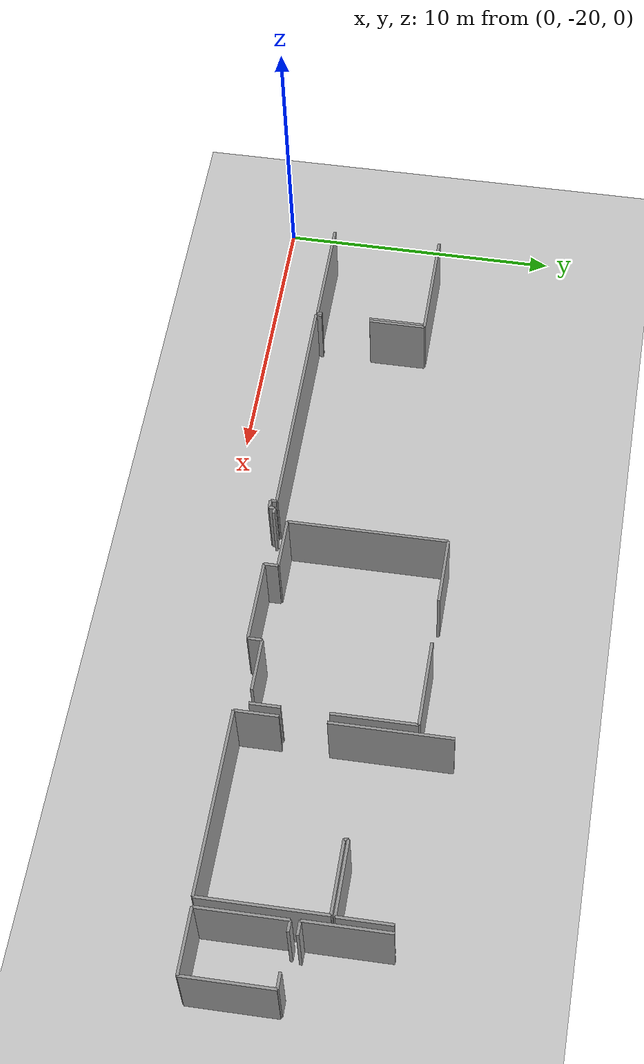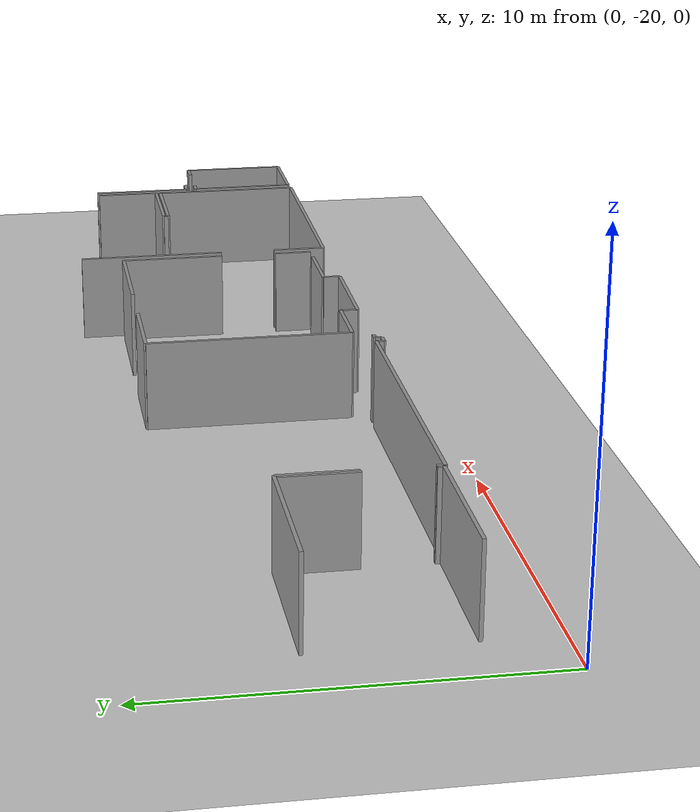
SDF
<sdf version="1.6">
 <world name="default">
  <model name="ground_plane">
   <static>1</static>
   <link name="link">
    <collision name="collision">
     <geometry><plane><normal>0 0 1</normal><size>100 100</size></plane></geometry>
     <surface><friction><ode><mu>100</mu><mu2>50</mu2></ode></friction></surface>
    </collision>
    <visual name="visual">
     <cast_shadows>0</cast_shadows>
     <geometry><plane><normal>0 0 1</normal><size>100 100</size></plane></geometry>
     <material>
      <script><uri>file://media/materials/scripts/gazebo.material</uri><name>Gazebo/Grey</name></script>
     </material>
    </visual>
   </link>
  </model>
  <model name="50045228">
   <static>1</static>
   <link name="Wall_249">
    <collision name="Wall_249_Collision">
     <geometry><box><size>2.96952205766 0.1 2.5</size></box></geometry>
     <pose>1.48476102883 0 1.25 0 0 0</pose>
    </collision>
    <visual name="Wall_249_Visual">
     <pose>1.48476102883 0 1.25 0 0 0</pose>
     <geometry><box><size>2.96952205766 0.1 2.5</size></box></geometry>
     <material>
      <script><uri>file://media/materials/scripts/gazebo.material</uri><name>Gazebo/Grey</name></script>
      <ambient>1 1 1 1</ambient>
     </material>
    </visual>
    <pose>76.0097681647 -43.1740192192 0 0 0 1.57079632679</pose>
   </link>
   <link name="Wall_257">
    <collision name="Wall_257_Collision">
     <geometry><box><size>0.492087152326 0.1 2.5</size></box></geometry>
     <pose>0.246043576163 0 1.25 0 0 0</pose>
    </collision>
    <visual name="Wall_257_Visual">
     <pose>0.246043576163 0 1.25 0 0 0</pose>
     <geometry><box><size>0.492087152326 0.1 2.5</size></box></geometry>
     <material>
      <script><uri>file://media/materials/scripts/gazebo.material</uri><name>Gazebo/Grey</name></script>
      <ambient>1 1 1 1</ambient>
     </material>
    </visual>
    <pose>76.501855317 -43.1740192192 0 0 0 3.14159265359</pose>
   </link>
   <link name="Wall_258">
    <collision name="Wall_258_Collision">
     <geometry><box><size>2.27078113602 0.1 2.5</size></box></geometry>
     <pose>1.13539056801 0 1.25 0 0 0</pose>
    </collision>
    <visual name="Wall_258_Visual">
     <pose>1.13539056801 0 1.25 0 0 0</pose>
     <geometry><box><size>2.27078113602 0.1 2.5</size></box></geometry>
     <material>
      <script><uri>file://media/materials/scripts/gazebo.material</uri><name>Gazebo/Grey</name></script>
      <ambient>1 1 1 1</ambient>
     </material>
    </visual>
    <pose>76.0394532365 -46.5966826298 0 0 0 0.0</pose>
   </link>
   <link name="Wall_259">
    <collision name="Wall_259_Collision">
     <geometry><box><size>3.10805239288 0.1 2.5</size></box></geometry>
     <pose>1.55402619644 0 1.25 0 0 0</pose>
    </collision>
    <visual name="Wall_259_Visual">
     <pose>1.55402619644 0 1.25 0 0 0</pose>
     <geometry><box><size>3.10805239288 0.1 2.5</size></box></geometry>
     <material>
      <script><uri>file://media/materials/scripts/gazebo.material</uri><name>Gazebo/Grey</name></script>
      <ambient>1 1 1 1</ambient>
     </material>
    </visual>
    <pose>78.3102343725 -46.5966826298 0 0 0 1.57079632679</pose>
   </link>
   <link name="Wall_260">
    <collision name="Wall_260_Collision">
     <geometry><box><size>0.558180837906 0.1 2.5</size></box></geometry>
     <pose>0.279090418953 0 1.25 0 0 0</pose>
    </collision>
    <visual name="Wall_260_Visual">
     <pose>0.279090418953 0 1.25 0 0 0</pose>
     <geometry><box><size>0.558180837906 0.1 2.5</size></box></geometry>
     <material>
      <script><uri>file://media/materials/scripts/gazebo.material</uri><name>Gazebo/Grey</name></script>
      <ambient>1 1 1 1</ambient>
     </material>
    </visual>
    <pose>78.3102343725 -43.4886302369 0 0 0 3.14159265359</pose>
   </link>
   <link name="Wall_261">
    <collision name="Wall_261_Collision">
     <geometry><box><size>0.40265135898 0.1 2.5</size></box></geometry>
     <pose>0.20132567949 0 1.25 0 0 0</pose>
    </collision>
    <visual name="Wall_261_Visual">
     <pose>0.20132567949 0 1.25 0 0 0</pose>
     <geometry><box><size>0.40265135898 0.1 2.5</size></box></geometry>
     <material>
      <script><uri>file://media/materials/scripts/gazebo.material</uri><name>Gazebo/Grey</name></script>
      <ambient>1 1 1 1</ambient>
     </material>
    </visual>
    <pose>76.435127335 -43.4886302369 0 0 0 3.14159265359</pose>
   </link>
   <link name="Wall_262">
    <collision name="Wall_262_Collision">
     <geometry><box><size>3.10806022449 0.1 2.5</size></box></geometry>
     <pose>1.55403011225 0 1.25 0 0 0</pose>
    </collision>
    <visual name="Wall_262_Visual">
     <pose>1.55403011225 0 1.25 0 0 0</pose>
     <geometry><box><size>3.10806022449 0.1 2.5</size></box></geometry>
     <material>
      <script><uri>file://media/materials/scripts/gazebo.material</uri><name>Gazebo/Grey</name></script>
      <ambient>1 1 1 1</ambient>
     </material>
    </visual>
    <pose>76.032475976 -43.4886302369 0 0 0 -1.56855143261</pose>
   </link>
   <link name="Wall_268">
    <collision name="Wall_268_Collision">
     <geometry><box><size>1.52231137611 0.1 2.5</size></box></geometry>
     <pose>0.761155688053 0 1.25 0 0 0</pose>
    </collision>
    <visual name="Wall_268_Visual">
     <pose>0.761155688053 0 1.25 0 0 0</pose>
     <geometry><box><size>1.52231137611 0.1 2.5</size></box></geometry>
     <material>
      <script><uri>file://media/materials/scripts/gazebo.material</uri><name>Gazebo/Grey</name></script>
      <ambient>1 1 1 1</ambient>
     </material>
    </visual>
    <pose>69.0847737148 -46.6060702166 0 0 0 1.57079632679</pose>
   </link>
   <link name="Wall_269">
    <collision name="Wall_269_Collision">
     <geometry><box><size>4.22492150582 0.1 2.5</size></box></geometry>
     <pose>2.11246075291 0 1.25 0 0 0</pose>
    </collision>
    <visual name="Wall_269_Visual">
     <pose>2.11246075291 0 1.25 0 0 0</pose>
     <geometry><box><size>4.22492150582 0.1 2.5</size></box></geometry>
     <material>
      <script><uri>file://media/materials/scripts/gazebo.material</uri><name>Gazebo/Grey</name></script>
      <ambient>1 1 1 1</ambient>
     </material>
    </visual>
    <pose>69.0847737148 -43.4731534046 0 0 0 1.57079632679</pose>
   </link>
   <link name="Wall_273">
    <collision name="Wall_273_Collision">
     <geometry><box><size>1.87967397165 0.1 2.5</size></box></geometry>
     <pose>0.939836985823 0 1.25 0 0 0</pose>
    </collision>
    <visual name="Wall_273_Visual">
     <pose>0.939836985823 0 1.25 0 0 0</pose>
     <geometry><box><size>1.87967397165 0.1 2.5</size></box></geometry>
     <material>
      <script><uri>file://media/materials/scripts/gazebo.material</uri><name>Gazebo/Grey</name></script>
      <ambient>1 1 1 1</ambient>
     </material>
    </visual>
    <pose>75.7349909613 -40.2462338651 0 0 0 -1.57079632679</pose>
   </link>
   <link name="Wall_274">
    <collision name="Wall_274_Collision">
     <geometry><box><size>2.63055405791 0.1 2.5</size></box></geometry>
     <pose>1.31527702896 0 1.25 0 0 0</pose>
    </collision>
    <visual name="Wall_274_Visual">
     <pose>1.31527702896 0 1.25 0 0 0</pose>
     <geometry><box><size>2.63055405791 0.1 2.5</size></box></geometry>
     <material>
      <script><uri>file://media/materials/scripts/gazebo.material</uri><name>Gazebo/Grey</name></script>
      <ambient>1 1 1 1</ambient>
     </material>
    </visual>
    <pose>75.7349909613 -42.1259078367 0 0 0 3.14159265359</pose>
   </link>
   <link name="Wall_275">
    <collision name="Wall_275_Collision">
     <geometry><box><size>0.134343978941 0.1 2.5</size></box></geometry>
     <pose>0.0671719894707 0 1.25 0 0 0</pose>
    </collision>
    <visual name="Wall_275_Visual">
     <pose>0.0671719894707 0 1.25 0 0 0</pose>
     <geometry><box><size>0.134343978941 0.1 2.5</size></box></geometry>
     <material>
      <script><uri>file://media/materials/scripts/gazebo.material</uri><name>Gazebo/Grey</name></script>
      <ambient>1 1 1 1</ambient>
     </material>
    </visual>
    <pose>73.1044369034 -42.1259078367 0 0 0 -1.57079632679</pose>
   </link>
   <link name="Wall_276">
    <collision name="Wall_276_Collision">
     <geometry><box><size>2.59960039326 0.1 2.5</size></box></geometry>
     <pose>1.29980019663 0 1.25 0 0 0</pose>
    </collision>
    <visual name="Wall_276_Visual">
     <pose>1.29980019663 0 1.25 0 0 0</pose>
     <geometry><box><size>2.59960039326 0.1 2.5</size></box></geometry>
     <material>
      <script><uri>file://media/materials/scripts/gazebo.material</uri><name>Gazebo/Grey</name></script>
      <ambient>1 1 1 1</ambient>
     </material>
    </visual>
    <pose>73.1044369034 -42.2602518157 0 0 0 0.0</pose>
   </link>
   <link name="Wall_277">
    <collision name="Wall_277_Collision">
     <geometry><box><size>4.37892867337 0.1 2.5</size></box></geometry>
     <pose>2.18946433668 0 1.25 0 0 0</pose>
    </collision>
    <visual name="Wall_277_Visual">
     <pose>2.18946433668 0 1.25 0 0 0</pose>
     <geometry><box><size>4.37892867337 0.1 2.5</size></box></geometry>
     <material>
      <script><uri>file://media/materials/scripts/gazebo.material</uri><name>Gazebo/Grey</name></script>
      <ambient>1 1 1 1</ambient>
     </material>
    </visual>
    <pose>75.7040372966 -42.2602518157 0 0 0 -1.57079632679</pose>
   </link>
   <link name="Wall_278">
    <collision name="Wall_278_Collision">
     <geometry><box><size>6.61934639194 0.1 2.5</size></box></geometry>
     <pose>3.30967319597 0 1.25 0 0 0</pose>
    </collision>
    <visual name="Wall_278_Visual">
     <pose>3.30967319597 0 1.25 0 0 0</pose>
     <geometry><box><size>6.61934639194 0.1 2.5</size></box></geometry>
     <material>
      <script><uri>file://media/materials/scripts/gazebo.material</uri><name>Gazebo/Grey</name></script>
      <ambient>1 1 1 1</ambient>
     </material>
    </visual>
    <pose>75.7040372966 -46.639180489 0 0 0 3.13659058714</pose>
   </link>
   <link name="Wall_287">
    <collision name="Wall_287_Collision">
     <geometry><box><size>0.483714439758 0.1 2.5</size></box></geometry>
     <pose>0.241857219879 0 1.25 0 0 0</pose>
    </collision>
    <visual name="Wall_287_Visual">
     <pose>0.241857219879 0 1.25 0 0 0</pose>
     <geometry><box><size>0.483714439758 0.1 2.5</size></box></geometry>
     <material>
      <script><uri>file://media/materials/scripts/gazebo.material</uri><name>Gazebo/Grey</name></script>
      <ambient>1 1 1 1</ambient>
     </material>
    </visual>
    <pose>63.3811804256 -46.618883004 0 0 0 1.57079632679</pose>
   </link>
   <link name="Wall_288">
    <collision name="Wall_288_Collision">
     <geometry><box><size>1.81002822619 0.1 2.5</size></box></geometry>
     <pose>0.905014113095 0 1.25 0 0 0</pose>
    </collision>
    <visual name="Wall_288_Visual">
     <pose>0.905014113095 0 1.25 0 0 0</pose>
     <geometry><box><size>1.81002822619 0.1 2.5</size></box></geometry>
     <material>
      <script><uri>file://media/materials/scripts/gazebo.material</uri><name>Gazebo/Grey</name></script>
      <ambient>1 1 1 1</ambient>
     </material>
    </visual>
    <pose>63.3811804256 -46.1351685643 0 0 0 3.14159265359</pose>
   </link>
   <link name="Wall_289">
    <collision name="Wall_289_Collision">
     <geometry><box><size>5.64701404967 0.1 2.5</size></box></geometry>
     <pose>2.82350702483 0 1.25 0 0 0</pose>
    </collision>
    <visual name="Wall_289_Visual">
     <pose>2.82350702483 0 1.25 0 0 0</pose>
     <geometry><box><size>5.64701404967 0.1 2.5</size></box></geometry>
     <material>
      <script><uri>file://media/materials/scripts/gazebo.material</uri><name>Gazebo/Grey</name></script>
      <ambient>1 1 1 1</ambient>
     </material>
    </visual>
    <pose>61.5711521994 -46.1351685643 0 0 0 1.57079632679</pose>
   </link>
   <link name="Wall_290">
    <collision name="Wall_290_Collision">
     <geometry><box><size>2.41058006406 0.1 2.5</size></box></geometry>
     <pose>1.20529003203 0 1.25 0 0 0</pose>
    </collision>
    <visual name="Wall_290_Visual">
     <pose>1.20529003203 0 1.25 0 0 0</pose>
     <geometry><box><size>2.41058006406 0.1 2.5</size></box></geometry>
     <material>
      <script><uri>file://media/materials/scripts/gazebo.material</uri><name>Gazebo/Grey</name></script>
      <ambient>1 1 1 1</ambient>
     </material>
    </visual>
    <pose>61.5711521994 -40.4881545146 0 0 0 0.0</pose>
   </link>
   <link name="Wall_291">
    <collision name="Wall_291_Collision">
     <geometry><box><size>3.11160445276 0.1 2.5</size></box></geometry>
     <pose>1.55580222638 0 1.25 0 0 0</pose>
    </collision>
    <visual name="Wall_291_Visual">
     <pose>1.55580222638 0 1.25 0 0 0</pose>
     <geometry><box><size>3.11160445276 0.1 2.5</size></box></geometry>
     <material>
      <script><uri>file://media/materials/scripts/gazebo.material</uri><name>Gazebo/Grey</name></script>
      <ambient>1 1 1 1</ambient>
     </material>
    </visual>
    <pose>65.6362310108 -40.4881545146 0 0 0 0.0</pose>
   </link>
   <link name="Wall_292">
    <collision name="Wall_292_Collision">
     <geometry><box><size>2.9624179379 0.1 2.5</size></box></geometry>
     <pose>1.48120896895 0 1.25 0 0 0</pose>
    </collision>
    <visual name="Wall_292_Visual">
     <pose>1.48120896895 0 1.25 0 0 0</pose>
     <geometry><box><size>2.9624179379 0.1 2.5</size></box></geometry>
     <material>
      <script><uri>file://media/materials/scripts/gazebo.material</uri><name>Gazebo/Grey</name></script>
      <ambient>1 1 1 1</ambient>
     </material>
    </visual>
    <pose>68.7478354635 -40.4881545146 0 0 0 -1.57079632679</pose>
   </link>
   <link name="Wall_293">
    <collision name="Wall_293_Collision">
     <geometry><box><size>1.06561796327 0.1 2.5</size></box></geometry>
     <pose>0.532808981637 0 1.25 0 0 0</pose>
    </collision>
    <visual name="Wall_293_Visual">
     <pose>0.532808981637 0 1.25 0 0 0</pose>
     <geometry><box><size>1.06561796327 0.1 2.5</size></box></geometry>
     <material>
      <script><uri>file://media/materials/scripts/gazebo.material</uri><name>Gazebo/Grey</name></script>
      <ambient>1 1 1 1</ambient>
     </material>
    </visual>
    <pose>68.7478354635 -45.0870571818 0 0 0 -1.57079632679</pose>
   </link>
   <link name="Wall_294">
    <collision name="Wall_294_Collision">
     <geometry><box><size>1.90288922013 0.1 2.5</size></box></geometry>
     <pose>0.951444610066 0 1.25 0 0 0</pose>
    </collision>
    <visual name="Wall_294_Visual">
     <pose>0.951444610066 0 1.25 0 0 0</pose>
     <geometry><box><size>1.90288922013 0.1 2.5</size></box></geometry>
     <material>
      <script><uri>file://media/materials/scripts/gazebo.material</uri><name>Gazebo/Grey</name></script>
      <ambient>1 1 1 1</ambient>
     </material>
    </visual>
    <pose>68.237607434 -46.1526751451 0 0 0 3.14159265359</pose>
   </link>
   <link name="Wall_295">
    <collision name="Wall_295_Collision">
     <geometry><box><size>0.4820652691 0.1 2.5</size></box></geometry>
     <pose>0.24103263455 0 1.25 0 0 0</pose>
    </collision>
    <visual name="Wall_295_Visual">
     <pose>0.24103263455 0 1.25 0 0 0</pose>
     <geometry><box><size>0.4820652691 0.1 2.5</size></box></geometry>
     <material>
      <script><uri>file://media/materials/scripts/gazebo.material</uri><name>Gazebo/Grey</name></script>
      <ambient>1 1 1 1</ambient>
     </material>
    </visual>
    <pose>66.3347182138 -46.1526751451 0 0 0 -1.57079632679</pose>
   </link>
   <link name="Wall_296">
    <collision name="Wall_296_Collision">
     <geometry><box><size>2.95358035676 0.1 2.5</size></box></geometry>
     <pose>1.47679017838 0 1.25 0 0 0</pose>
    </collision>
    <visual name="Wall_296_Visual">
     <pose>1.47679017838 0 1.25 0 0 0</pose>
     <geometry><box><size>2.95358035676 0.1 2.5</size></box></geometry>
     <material>
      <script><uri>file://media/materials/scripts/gazebo.material</uri><name>Gazebo/Grey</name></script>
      <ambient>1 1 1 1</ambient>
     </material>
    </visual>
    <pose>66.3347182138 -46.6347404142 0 0 0 3.13622375062</pose>
   </link>
   <link name="Wall_297">
    <collision name="Wall_297_Collision">
     <geometry><box><size>0.209571532777 0.1 2.5</size></box></geometry>
     <pose>0.104785766389 0 1.25 0 0 0</pose>
    </collision>
    <visual name="Wall_297_Visual">
     <pose>0.104785766389 0 1.25 0 0 0</pose>
     <geometry><box><size>0.209571532777 0.1 2.5</size></box></geometry>
     <material>
      <script><uri>file://media/materials/scripts/gazebo.material</uri><name>Gazebo/Grey</name></script>
      <ambient>1 1 1 1</ambient>
     </material>
    </visual>
    <pose>52.4497161524 -46.661254004 0 0 0 1.57079632679</pose>
   </link>
   <link name="Wall_298">
    <collision name="Wall_298_Collision">
     <geometry><box><size>2.03520345057 0.1 2.5</size></box></geometry>
     <pose>1.01760172529 0 1.25 0 0 0</pose>
    </collision>
    <visual name="Wall_298_Visual">
     <pose>1.01760172529 0 1.25 0 0 0</pose>
     <geometry><box><size>2.03520345057 0.1 2.5</size></box></geometry>
     <material>
      <script><uri>file://media/materials/scripts/gazebo.material</uri><name>Gazebo/Grey</name></script>
      <ambient>1 1 1 1</ambient>
     </material>
    </visual>
    <pose>52.4497161524 -44.6504075354 0 0 0 1.57079632679</pose>
   </link>
   <link name="Wall_299">
    <collision name="Wall_299_Collision">
     <geometry><box><size>4.01598426945 0.1 2.5</size></box></geometry>
     <pose>2.00799213472 0 1.25 0 0 0</pose>
    </collision>
    <visual name="Wall_299_Visual">
     <pose>2.00799213472 0 1.25 0 0 0</pose>
     <geometry><box><size>4.01598426945 0.1 2.5</size></box></geometry>
     <material>
      <script><uri>file://media/materials/scripts/gazebo.material</uri><name>Gazebo/Grey</name></script>
      <ambient>1 1 1 1</ambient>
     </material>
    </visual>
    <pose>52.4497161524 -42.6152040849 0 0 0 3.14159265359</pose>
   </link>
   <link name="Wall_309">
    <collision name="Wall_309_Collision">
     <geometry><box><size>0.222257460911 0.1 2.5</size></box></geometry>
     <pose>0.111128730456 0 1.25 0 0 0</pose>
    </collision>
    <visual name="Wall_309_Visual">
     <pose>0.111128730456 0 1.25 0 0 0</pose>
     <geometry><box><size>0.222257460911 0.1 2.5</size></box></geometry>
     <material>
      <script><uri>file://media/materials/scripts/gazebo.material</uri><name>Gazebo/Grey</name></script>
      <ambient>1 1 1 1</ambient>
     </material>
    </visual>
    <pose>61.2984047445 -46.6727981986 0 0 0 3.14159265359</pose>
   </link>
   <link name="Wall_310">
    <collision name="Wall_310_Collision">
     <geometry><box><size>0.186990580698 0.1 2.5</size></box></geometry>
     <pose>0.0934952903492 0 1.25 0 0 0</pose>
    </collision>
    <visual name="Wall_310_Visual">
     <pose>0.0934952903492 0 1.25 0 0 0</pose>
     <geometry><box><size>0.186990580698 0.1 2.5</size></box></geometry>
     <material>
      <script><uri>file://media/materials/scripts/gazebo.material</uri><name>Gazebo/Grey</name></script>
      <ambient>1 1 1 1</ambient>
     </material>
    </visual>
    <pose>61.0761472836 -46.6727981986 0 0 0 -1.57079632679</pose>
   </link>
   <link name="Wall_311">
    <collision name="Wall_311_Collision">
     <geometry><box><size>0.286828835115 0.1 2.5</size></box></geometry>
     <pose>0.143414417557 0 1.25 0 0 0</pose>
    </collision>
    <visual name="Wall_311_Visual">
     <pose>0.143414417557 0 1.25 0 0 0</pose>
     <geometry><box><size>0.286828835115 0.1 2.5</size></box></geometry>
     <material>
      <script><uri>file://media/materials/scripts/gazebo.material</uri><name>Gazebo/Grey</name></script>
      <ambient>1 1 1 1</ambient>
     </material>
    </visual>
    <pose>61.0761472836 -46.8597887793 0 0 0 3.14159265359</pose>
   </link>
   <link name="Wall_312">
    <collision name="Wall_312_Collision">
     <geometry><box><size>0.209571532777 0.1 2.5</size></box></geometry>
     <pose>0.104785766389 0 1.25 0 0 0</pose>
    </collision>
    <visual name="Wall_312_Visual">
     <pose>0.104785766389 0 1.25 0 0 0</pose>
     <geometry><box><size>0.209571532777 0.1 2.5</size></box></geometry>
     <material>
      <script><uri>file://media/materials/scripts/gazebo.material</uri><name>Gazebo/Grey</name></script>
      <ambient>1 1 1 1</ambient>
     </material>
    </visual>
    <pose>60.7893184485 -46.8597887793 0 0 0 1.57079632679</pose>
   </link>
   <link name="Wall_313">
    <collision name="Wall_313_Collision">
     <geometry><box><size>8.33960959926 0.1 2.5</size></box></geometry>
     <pose>4.16980479963 0 1.25 0 0 0</pose>
    </collision>
    <visual name="Wall_313_Visual">
     <pose>4.16980479963 0 1.25 0 0 0</pose>
     <geometry><box><size>8.33960959926 0.1 2.5</size></box></geometry>
     <material>
      <script><uri>file://media/materials/scripts/gazebo.material</uri><name>Gazebo/Grey</name></script>
      <ambient>1 1 1 1</ambient>
     </material>
    </visual>
    <pose>60.7893184485 -46.6502172465 0 0 0 -3.14026923904</pose>
   </link>
   <link name="Wall_316">
    <collision name="Wall_316_Collision">
     <geometry><box><size>1.99524277695 0.1 2.5</size></box></geometry>
     <pose>0.997621388475 0 1.25 0 0 0</pose>
    </collision>
    <visual name="Wall_316_Visual">
     <pose>0.997621388475 0 1.25 0 0 0</pose>
     <geometry><box><size>1.99524277695 0.1 2.5</size></box></geometry>
     <material>
      <script><uri>file://media/materials/scripts/gazebo.material</uri><name>Gazebo/Grey</name></script>
      <ambient>1 1 1 1</ambient>
     </material>
    </visual>
    <pose>52.3657353081 -42.6726713393 0 0 0 -1.57079632679</pose>
   </link>
   <link name="Wall_317">
    <collision name="Wall_317_Collision">
     <geometry><box><size>0.167707969934 0.1 2.5</size></box></geometry>
     <pose>0.0838539849672 0 1.25 0 0 0</pose>
    </collision>
    <visual name="Wall_317_Visual">
     <pose>0.0838539849672 0 1.25 0 0 0</pose>
     <geometry><box><size>0.167707969934 0.1 2.5</size></box></geometry>
     <material>
      <script><uri>file://media/materials/scripts/gazebo.material</uri><name>Gazebo/Grey</name></script>
      <ambient>1 1 1 1</ambient>
     </material>
    </visual>
    <pose>52.3657353081 -46.4533316419 0 0 0 -1.57079632679</pose>
   </link>
   <link name="Wall_318">
    <collision name="Wall_318_Collision">
     <geometry><box><size>3.92325447473 0.1 2.5</size></box></geometry>
     <pose>1.96162723736 0 1.25 0 0 0</pose>
    </collision>
    <visual name="Wall_318_Visual">
     <pose>1.96162723736 0 1.25 0 0 0</pose>
     <geometry><box><size>3.92325447473 0.1 2.5</size></box></geometry>
     <material>
      <script><uri>file://media/materials/scripts/gazebo.material</uri><name>Gazebo/Grey</name></script>
      <ambient>1 1 1 1</ambient>
     </material>
    </visual>
    <pose>52.3657353081 -46.6210396118 0 0 0 3.1401052331</pose>
   </link>
   <pose>-46.9 28.5754781009 0 0 0 0</pose>
  </model>
 </world>
</sdf>
